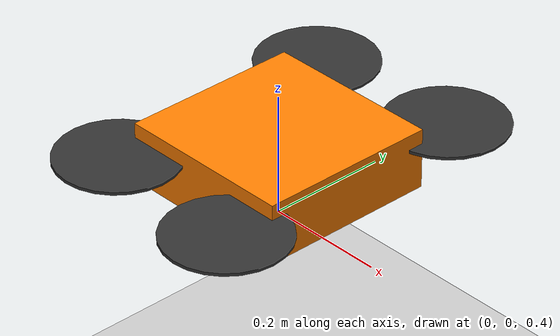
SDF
<?xml version="1.0" ?>
<sdf version="1.9">
  <world name="tello_world">
    <physics name="1ms" type="ignored">
      <max_step_size>0.001</max_step_size>
      <real_time_factor>1.0</real_time_factor>
    </physics>

    <plugin filename="gz-sim-physics-system" name="gz::sim::systems::Physics"></plugin>
    <plugin filename="gz-sim-user-commands-system" name="gz::sim::systems::UserCommands"></plugin>
    <plugin filename="gz-sim-scene-broadcaster-system" name="gz::sim::systems::SceneBroadcaster"></plugin>

    <light type="directional" name="sun">
      <cast_shadows>true</cast_shadows>
      <pose>0 0 10 0 0 0</pose>
      <diffuse>0.8 0.8 0.8 1</diffuse>
      <specular>0.2 0.2 0.2 1</specular>
      <attenuation>
        <range>1000</range>
        <constant>0.9</constant>
        <linear>0.01</linear>
        <quadratic>0.001</quadratic>
      </attenuation>
      <direction>-0.5 0.1 -0.9</direction>
    </light>

    <model name="ground_plane">
      <static>true</static>
      <link name="link">
        <collision name="collision">
          <geometry>
            <plane>
              <normal>0 0 1</normal>
            </plane>
          </geometry>
        </collision>
        <visual name="visual">
          <geometry>
            <plane>
              <normal>0 0 1</normal>
              <size>100 100</size>
            </plane>
          </geometry>
          <material>
            <ambient>0.8 0.8 0.8 1</ambient>
            <diffuse>0.8 0.8 0.8 1</diffuse>
            <specular>0.8 0.8 0.8 1</specular>
          </material>
        </visual>
      </link>
    </model>

    <model name="quadcopter">
      <pose>0 0 0.5 0 0 0</pose>

      <link name="base_link">
        <inertial>
          <mass>1.5</mass>
          <inertia>
            <ixx>0.029125</ixx>
            <ixy>0</ixy>
            <ixz>0</ixz>
            <iyy>0.029125</iyy>
            <iyz>0</iyz>
            <izz>0.055225</izz>
          </inertia>
        </inertial>

        <collision name="collision">
          <geometry>
            <box>
              <size>0.3 0.3 0.1</size>
            </box>
          </geometry>
        </collision>

        <visual name="visual">
          <geometry>
            <box>
              <size>0.3 0.3 0.1</size>
            </box>
          </geometry>
          <material>
            <ambient>1 0.5 0 1</ambient>
            <diffuse>1 0.5 0 1</diffuse>
            <specular>0.5 0.5 0.5 1</specular>
          </material>
        </visual>
      </link>

      <!-- Rotor 0 - Front Right -->
      <link name="rotor_0">
        <pose relative_to="base_link">0.13 -0.22 0.023 0 0 0</pose>
        <inertial>
          <mass>0.005</mass>
          <inertia>
            <ixx>9.75e-07</ixx>
            <iyy>0.000166704</iyy>
            <izz>0.000167604</izz>
          </inertia>
        </inertial>
        <visual name="visual">
          <geometry>
            <cylinder>
              <radius>0.1</radius>
              <length>0.005</length>
            </cylinder>
          </geometry>
          <material>
            <ambient>0.2 0.2 0.2 1</ambient>
            <diffuse>0.2 0.2 0.2 1</diffuse>
          </material>
        </visual>
      </link>

      <joint name="rotor_0_joint" type="revolute">
        <parent>base_link</parent>
        <child>rotor_0</child>
        <axis>
          <xyz>0 0 1</xyz>
          <limit>
            <lower>-1e16</lower>
            <upper>1e16</upper>
          </limit>
        </axis>
      </joint>

      <!-- Rotor 1 - Back Left -->
      <link name="rotor_1">
        <pose relative_to="base_link">-0.13 0.2 0.023 0 0 0</pose>
        <inertial>
          <mass>0.005</mass>
          <inertia>
            <ixx>9.75e-07</ixx>
            <iyy>0.000166704</iyy>
            <izz>0.000167604</izz>
          </inertia>
        </inertial>
        <visual name="visual">
          <geometry>
            <cylinder>
              <radius>0.1</radius>
              <length>0.005</length>
            </cylinder>
          </geometry>
          <material>
            <ambient>0.2 0.2 0.2 1</ambient>
            <diffuse>0.2 0.2 0.2 1</diffuse>
          </material>
        </visual>
      </link>

      <joint name="rotor_1_joint" type="revolute">
        <parent>base_link</parent>
        <child>rotor_1</child>
        <axis>
          <xyz>0 0 1</xyz>
          <limit>
            <lower>-1e16</lower>
            <upper>1e16</upper>
          </limit>
        </axis>
      </joint>

      <!-- Rotor 2 - Front Left -->
      <link name="rotor_2">
        <pose relative_to="base_link">0.13 0.22 0.023 0 0 0</pose>
        <inertial>
          <mass>0.005</mass>
          <inertia>
            <ixx>9.75e-07</ixx>
            <iyy>0.000166704</iyy>
            <izz>0.000167604</izz>
          </inertia>
        </inertial>
        <visual name="visual">
          <geometry>
            <cylinder>
              <radius>0.1</radius>
              <length>0.005</length>
            </cylinder>
          </geometry>
          <material>
            <ambient>0.2 0.2 0.2 1</ambient>
            <diffuse>0.2 0.2 0.2 1</diffuse>
          </material>
        </visual>
      </link>

      <joint name="rotor_2_joint" type="revolute">
        <parent>base_link</parent>
        <child>rotor_2</child>
        <axis>
          <xyz>0 0 1</xyz>
          <limit>
            <lower>-1e16</lower>
            <upper>1e16</upper>
          </limit>
        </axis>
      </joint>

      <!-- Rotor 3 - Back Right -->
      <link name="rotor_3">
        <pose relative_to="base_link">-0.13 -0.2 0.023 0 0 0</pose>
        <inertial>
          <mass>0.005</mass>
          <inertia>
            <ixx>9.75e-07</ixx>
            <iyy>0.000166704</iyy>
            <izz>0.000167604</izz>
          </inertia>
        </inertial>
        <visual name="visual">
          <geometry>
            <cylinder>
              <radius>0.1</radius>
              <length>0.005</length>
            </cylinder>
          </geometry>
          <material>
            <ambient>0.2 0.2 0.2 1</ambient>
            <diffuse>0.2 0.2 0.2 1</diffuse>
          </material>
        </visual>
      </link>

      <joint name="rotor_3_joint" type="revolute">
        <parent>base_link</parent>
        <child>rotor_3</child>
        <axis>
          <xyz>0 0 1</xyz>
          <limit>
            <lower>-1e16</lower>
            <upper>1e16</upper>
          </limit>
        </axis>
      </joint>

      <!-- Motor plugins -->
      <plugin filename="gz-sim-multicopter-motor-model-system" name="gz::sim::systems::MulticopterMotorModel">
        <robotNamespace>quadcopter</robotNamespace>
        <jointName>rotor_0_joint</jointName>
        <linkName>rotor_0</linkName>
        <turningDirection>ccw</turningDirection>
        <timeConstantUp>0.0125</timeConstantUp>
        <timeConstantDown>0.025</timeConstantDown>
        <maxRotVelocity>800</maxRotVelocity>
        <motorConstant>8.54858e-06</motorConstant>
        <momentConstant>0.016</momentConstant>
        <commandSubTopic>command/motor_speed</commandSubTopic>
        <motorNumber>0</motorNumber>
        <rotorDragCoefficient>8.06428e-05</rotorDragCoefficient>
        <rollingMomentCoefficient>1e-06</rollingMomentCoefficient>
        <rotorVelocitySlowdownSim>10</rotorVelocitySlowdownSim>
        <motorType>velocity</motorType>
      </plugin>

      <plugin filename="gz-sim-multicopter-motor-model-system" name="gz::sim::systems::MulticopterMotorModel">
        <robotNamespace>quadcopter</robotNamespace>
        <jointName>rotor_1_joint</jointName>
        <linkName>rotor_1</linkName>
        <turningDirection>ccw</turningDirection>
        <timeConstantUp>0.0125</timeConstantUp>
        <timeConstantDown>0.025</timeConstantDown>
        <maxRotVelocity>800</maxRotVelocity>
        <motorConstant>8.54858e-06</motorConstant>
        <momentConstant>0.016</momentConstant>
        <commandSubTopic>command/motor_speed</commandSubTopic>
        <motorNumber>1</motorNumber>
        <rotorDragCoefficient>8.06428e-05</rotorDragCoefficient>
        <rollingMomentCoefficient>1e-06</rollingMomentCoefficient>
        <rotorVelocitySlowdownSim>10</rotorVelocitySlowdownSim>
        <motorType>velocity</motorType>
      </plugin>

      <plugin filename="gz-sim-multicopter-motor-model-system" name="gz::sim::systems::MulticopterMotorModel">
        <robotNamespace>quadcopter</robotNamespace>
        <jointName>rotor_2_joint</jointName>
        <linkName>rotor_2</linkName>
        <turningDirection>cw</turningDirection>
        <timeConstantUp>0.0125</timeConstantUp>
        <timeConstantDown>0.025</timeConstantDown>
        <maxRotVelocity>800</maxRotVelocity>
        <motorConstant>8.54858e-06</motorConstant>
        <momentConstant>0.016</momentConstant>
        <commandSubTopic>command/motor_speed</commandSubTopic>
        <motorNumber>2</motorNumber>
        <rotorDragCoefficient>8.06428e-05</rotorDragCoefficient>
        <rollingMomentCoefficient>1e-06</rollingMomentCoefficient>
        <rotorVelocitySlowdownSim>10</rotorVelocitySlowdownSim>
        <motorType>velocity</motorType>
      </plugin>

      <plugin filename="gz-sim-multicopter-motor-model-system" name="gz::sim::systems::MulticopterMotorModel">
        <robotNamespace>quadcopter</robotNamespace>
        <jointName>rotor_3_joint</jointName>
        <linkName>rotor_3</linkName>
        <turningDirection>cw</turningDirection>
        <timeConstantUp>0.0125</timeConstantUp>
        <timeConstantDown>0.025</timeConstantDown>
        <maxRotVelocity>800</maxRotVelocity>
        <motorConstant>8.54858e-06</motorConstant>
        <momentConstant>0.016</momentConstant>
        <commandSubTopic>command/motor_speed</commandSubTopic>
        <motorNumber>3</motorNumber>
        <rotorDragCoefficient>8.06428e-05</rotorDragCoefficient>
        <rollingMomentCoefficient>1e-06</rollingMomentCoefficient>
        <rotorVelocitySlowdownSim>10</rotorVelocitySlowdownSim>
        <motorType>velocity</motorType>
      </plugin>

      <!-- Multicopter velocity control plugin -->
      <plugin filename="gz-sim-multicopter-control-system" name="gz::sim::systems::MulticopterVelocityControl">
        <robotNamespace>quadcopter</robotNamespace>
        <commandSubTopic>cmd_vel</commandSubTopic>
        <motorControlPubTopic>command/motor_speed</motorControlPubTopic>
        <enableSubTopic>enable</enableSubTopic>
        <comLinkName>base_link</comLinkName>
        <velocityGain>2.7 2.7 2.7</velocityGain>
        <attitudeGain>2.0 2.0 0.2</attitudeGain>
        <angularRateGain>0.4 0.4 0.2</angularRateGain>
        <maximumLinearAcceleration>2 2 2</maximumLinearAcceleration>
        <maximumLinearVelocity>5 5 5</maximumLinearVelocity>
        <maximumAngularVelocity>3 3 3</maximumAngularVelocity>
        <rotorConfiguration>
          <rotor>
            <jointName>rotor_0_joint</jointName>
            <forceConstant>8.54858e-06</forceConstant>
            <momentConstant>0.016</momentConstant>
            <direction>1</direction>
          </rotor>
          <rotor>
            <jointName>rotor_1_joint</jointName>
            <forceConstant>8.54858e-06</forceConstant>
            <momentConstant>0.016</momentConstant>
            <direction>1</direction>
          </rotor>
          <rotor>
            <jointName>rotor_2_joint</jointName>
            <forceConstant>8.54858e-06</forceConstant>
            <momentConstant>0.016</momentConstant>
            <direction>-1</direction>
          </rotor>
          <rotor>
            <jointName>rotor_3_joint</jointName>
            <forceConstant>8.54858e-06</forceConstant>
            <momentConstant>0.016</momentConstant>
            <direction>-1</direction>
          </rotor>
        </rotorConfiguration>
      </plugin>

      <!-- Odometry publisher -->
      <plugin filename="gz-sim-odometry-publisher-system" name="gz::sim::systems::OdometryPublisher">
        <odom_frame>quadcopter/odom</odom_frame>
        <robot_base_frame>quadcopter/base_link</robot_base_frame>
        <odom_publish_frequency>100</odom_publish_frequency>
      </plugin>

      <!-- Pose publisher -->
      <plugin filename="gz-sim-pose-publisher-system" name="gz::sim::systems::PosePublisher">
        <publish_link_pose>true</publish_link_pose>
        <update_frequency>100</update_frequency>
      </plugin>
    </model>

  </world>
</sdf>
